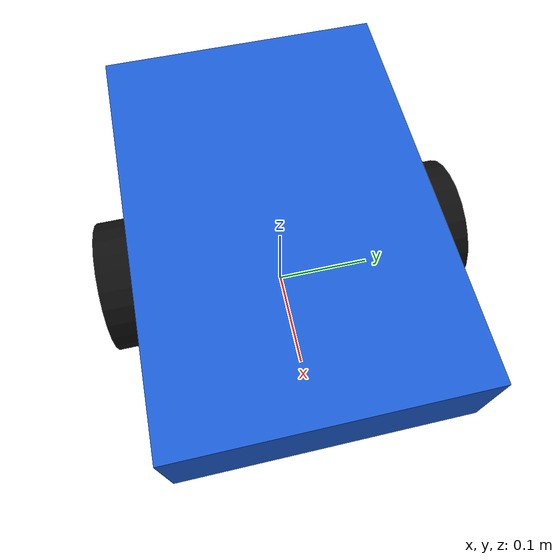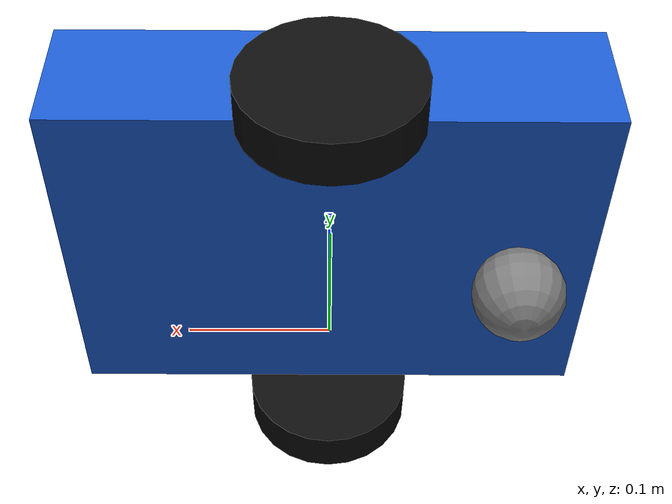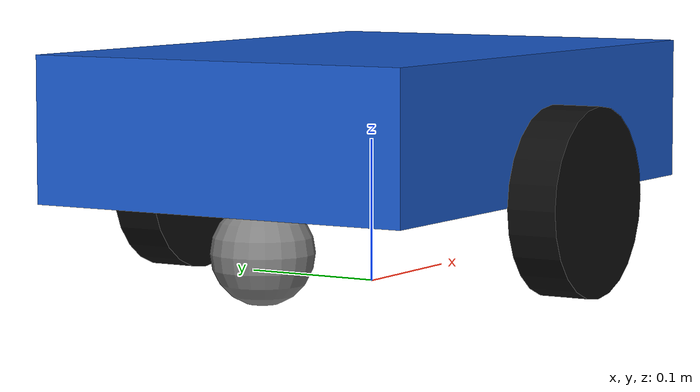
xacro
<?xml version="1.0"?>
<robot xmlns:xacro="http://www.ros.org/wiki/xacro" name="car_sim">
  <!-- Gazebo-only defaults, SI units. These are not measured vehicle dimensions. -->
  <xacro:property name="chassis_length_m" value="0.40"/>
  <xacro:property name="chassis_width_m" value="0.28"/>
  <xacro:property name="chassis_height_m" value="0.10"/>
  <xacro:property name="wheel_radius_m" value="0.065"/>
  <xacro:property name="wheel_width_m" value="0.035"/>
  <xacro:property name="wheel_separation_m" value="0.32"/>
  <xacro:property name="caster_radius_m" value="0.035"/>
  <xacro:property name="chassis_mass_kg" value="3.0"/>
  <xacro:property name="wheel_mass_kg" value="0.25"/>
  <xacro:property name="caster_mass_kg" value="0.10"/>
  <xacro:arg name="controllers_file" default="car_controllers.yaml"/>

  <xacro:macro name="box_inertia" params="mass x y z">
    <inertia ixx="${mass * (y*y + z*z) / 12.0}" ixy="0" ixz="0"
             iyy="${mass * (x*x + z*z) / 12.0}" iyz="0"
             izz="${mass * (x*x + y*y) / 12.0}"/>
  </xacro:macro>

  <xacro:macro name="wheel" params="side y">
    <link name="${side}_wheel_link">
      <inertial>
        <mass value="${wheel_mass_kg}"/>
        <origin rpy="1.5707963267948966 0 0"/>
        <inertia ixx="${wheel_mass_kg * (3*wheel_radius_m*wheel_radius_m + wheel_width_m*wheel_width_m) / 12.0}"
                 ixy="0" ixz="0"
                 iyy="${wheel_mass_kg * wheel_radius_m*wheel_radius_m / 2.0}"
                 iyz="0"
                 izz="${wheel_mass_kg * (3*wheel_radius_m*wheel_radius_m + wheel_width_m*wheel_width_m) / 12.0}"/>
      </inertial>
      <visual>
        <origin rpy="1.5707963267948966 0 0"/>
        <geometry><cylinder radius="${wheel_radius_m}" length="${wheel_width_m}"/></geometry>
        <material name="wheel_black"><color rgba="0.05 0.05 0.05 1"/></material>
      </visual>
      <collision>
        <origin rpy="1.5707963267948966 0 0"/>
        <geometry><cylinder radius="${wheel_radius_m}" length="${wheel_width_m}"/></geometry>
      </collision>
    </link>
    <joint name="${side}_wheel_joint" type="continuous">
      <parent link="base_link"/>
      <child link="${side}_wheel_link"/>
      <origin xyz="0 ${y} 0" rpy="0 0 0"/>
      <axis xyz="0 1 0"/>
      <dynamics damping="0.05" friction="0.0"/>
    </joint>
    <gazebo reference="${side}_wheel_link">
      <mu1>1.0</mu1>
      <mu2>1.0</mu2>
    </gazebo>
  </xacro:macro>

  <link name="base_footprint"/>
  <link name="base_link">
    <inertial>
      <mass value="0.001"/>
      <inertia ixx="0.000001" ixy="0" ixz="0" iyy="0.000001" iyz="0" izz="0.000001"/>
    </inertial>
  </link>
  <joint name="base_footprint_joint" type="fixed">
    <parent link="base_footprint"/>
    <child link="base_link"/>
    <origin xyz="0 0 ${wheel_radius_m}" rpy="0 0 0"/>
  </joint>

  <link name="chassis_link">
    <inertial>
      <origin xyz="0 0 ${chassis_height_m / 2.0}"/>
      <mass value="${chassis_mass_kg}"/>
      <xacro:box_inertia mass="${chassis_mass_kg}" x="${chassis_length_m}"
                          y="${chassis_width_m}" z="${chassis_height_m}"/>
    </inertial>
    <visual>
      <origin xyz="0 0 ${chassis_height_m / 2.0}"/>
      <geometry><box size="${chassis_length_m} ${chassis_width_m} ${chassis_height_m}"/></geometry>
      <material name="chassis_blue"><color rgba="0.10 0.35 0.80 1"/></material>
    </visual>
    <collision>
      <origin xyz="0 0 ${chassis_height_m / 2.0}"/>
      <geometry><box size="${chassis_length_m} ${chassis_width_m} ${chassis_height_m}"/></geometry>
    </collision>
  </link>
  <joint name="chassis_joint" type="fixed">
    <parent link="base_link"/>
    <child link="chassis_link"/>
    <origin xyz="0 0 0"/>
  </joint>

  <!-- Physical front-center placement reference: chassis_length_m / 2 ahead of base_link. -->
  <link name="car_front_reference"/>
  <joint name="car_front_reference_joint" type="fixed">
    <parent link="base_link"/>
    <child link="car_front_reference"/>
    <origin xyz="${chassis_length_m / 2.0} 0 0" rpy="0 0 0"/>
  </joint>

  <xacro:wheel side="left" y="${wheel_separation_m / 2.0}"/>
  <xacro:wheel side="right" y="${-wheel_separation_m / 2.0}"/>

  <link name="caster_link">
    <inertial>
      <mass value="${caster_mass_kg}"/>
      <inertia ixx="${0.4*caster_mass_kg*caster_radius_m*caster_radius_m}" ixy="0" ixz="0"
               iyy="${0.4*caster_mass_kg*caster_radius_m*caster_radius_m}" iyz="0"
               izz="${0.4*caster_mass_kg*caster_radius_m*caster_radius_m}"/>
    </inertial>
    <visual>
      <geometry><sphere radius="${caster_radius_m}"/></geometry>
      <material name="caster_gray"><color rgba="0.5 0.5 0.5 1"/></material>
    </visual>
    <collision><geometry><sphere radius="${caster_radius_m}"/></geometry></collision>
  </link>
  <joint name="caster_joint" type="fixed">
    <parent link="base_link"/>
    <child link="caster_link"/>
    <origin xyz="${-chassis_length_m * 0.35} 0 ${caster_radius_m - wheel_radius_m}" rpy="0 0 0"/>
  </joint>
  <gazebo reference="caster_link">
    <mu1>0.02</mu1>
    <mu2>0.02</mu2>
  </gazebo>

  <ros2_control name="GazeboSimSystem" type="system">
    <hardware>
      <plugin>gz_ros2_control/GazeboSimSystem</plugin>
    </hardware>
    <joint name="left_wheel_joint">
      <command_interface name="velocity"/>
      <state_interface name="position"/>
      <state_interface name="velocity"/>
    </joint>
    <joint name="right_wheel_joint">
      <command_interface name="velocity"/>
      <state_interface name="position"/>
      <state_interface name="velocity"/>
    </joint>
  </ros2_control>

  <gazebo>
    <plugin filename="libgz_ros2_control-system.so"
            name="gz_ros2_control::GazeboSimROS2ControlPlugin">
      <parameters>$(arg controllers_file)</parameters>
    </plugin>
  </gazebo>
</robot>
